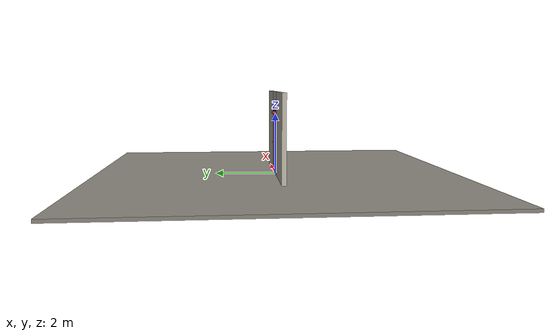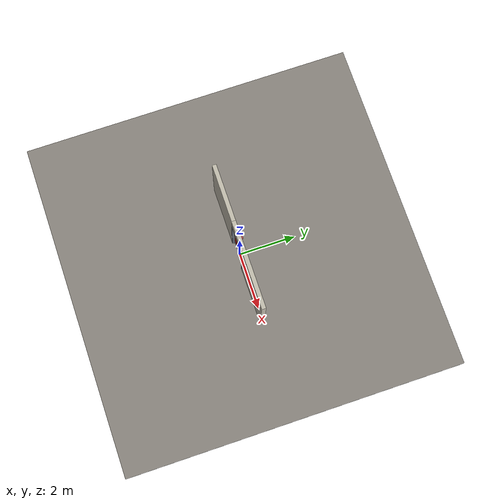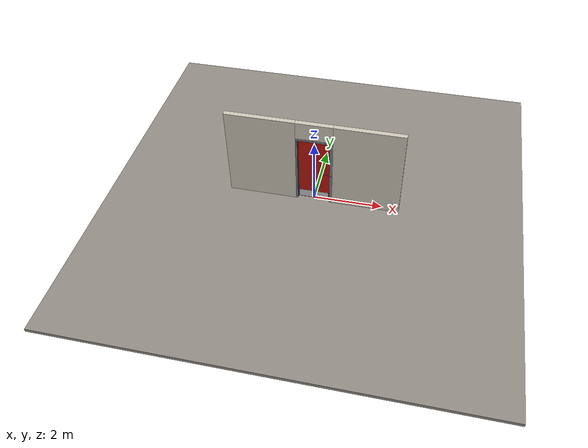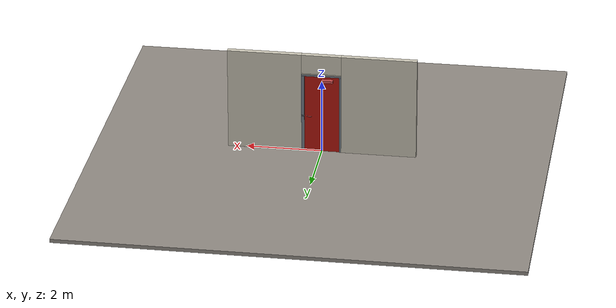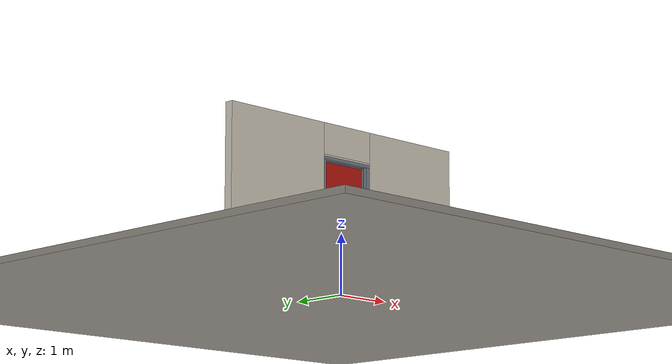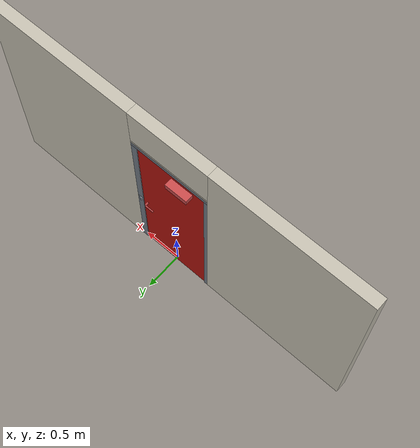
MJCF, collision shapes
<?xml version="1.0" ?>
<mujoco model="db0378_swing_single_simple">
  <compiler angle="radian" meshdir="../../hardware" texturedir="../../textures" autolimits="true" inertiafromgeom="false"/>
  <option timestep="0.002" integrator="implicitfast" cone="elliptic" impratio="10" noslip_iterations="3">
    <flag multiccd="enable"/>
  </option>
  <size memory="16M"/>
  <default>
    <geom condim="4" solref="0.005 1" solimp="0.95 0.99 0.001"/>
    <joint solreflimit="0.005 1" solimplimit="0.95 0.99 0.001"/>
    <tendon solreflimit="0.005 1"/>
    <equality solref="0.002 1"/>
  </default>
  <visual>
    <headlight ambient="0.4 0.4 0.4" diffuse="0.7 0.7 0.7" specular="0.2 0.2 0.2"/>
    <quality shadowsize="4096"/>
    <map znear="0.01" zfar="60"/>
  </visual>
  <asset>
    <mesh name="closer_body_fdc4667657" file="closer_body_fdc4667657.obj"/>
    <mesh name="hinge_ed08f20e7f" file="hinge_ed08f20e7f.obj"/>
    <mesh name="hinge_jamb_1278ce3e25" file="hinge_jamb_1278ce3e25.obj"/>
    <mesh name="lever_9f02b544cf" file="lever_9f02b544cf.obj"/>
    <material name="mat_floor" rgba="0.55 0.53 0.5 1" specular="0.2" shininess="0.15" reflectance="0"/>
    <material name="mat_wall" rgba="0.78 0.76 0.7 1" specular="0.2" shininess="0.1" reflectance="0"/>
    <material name="mat_leaf" rgba="0.7 0.08 0.05 1" specular="0.23" shininess="0.35" reflectance="0.02"/>
    <material name="mat_hinge" rgba="0.65 0.66 0.68 1" specular="0.74" shininess="0.5" reflectance="0.36"/>
    <material name="mat_op_nickel_satin" rgba="0.72 0.7 0.66 1" specular="0.8" shininess="0.65" reflectance="0.4"/>
    <material name="mat_trim" rgba="0.85 0.66 0.3 1" specular="0.8" shininess="0.75" reflectance="0.4"/>
    <material name="mat_bolt" rgba="0.85 0.66 0.3 1" specular="0.8" shininess="0.75" reflectance="0.4"/>
    <material name="mat_frame" rgba="0.45 0.48 0.52 1" specular="0.32" shininess="0.6" reflectance="0.08"/>
    <material name="mat_seal" rgba="0.1 0.1 0.1 1" specular="0.2" shininess="0.1" reflectance="0"/>
    <material name="mat_closer" rgba="0.22 0.17 0.13 1" specular="0.8" shininess="0.6" reflectance="0.4"/>
    <material name="mat_kick" rgba="0.75 0.76 0.77 1" specular="0.8" shininess="0.65" reflectance="0.4"/>
    <material name="mat_exit_sign" rgba="0.85 0.1 0.1 1" specular="0.2" shininess="0.6" reflectance="0"/>
    <material name="mat_sign_bracket" rgba="0.8 0.81 0.83 1" specular="0.8" shininess="0.6" reflectance="0.4"/>
    <material name="mat_sign" rgba="0.75 0.76 0.77 1" specular="0.8" shininess="0.65" reflectance="0.4"/>
    <material name="mat_placard" rgba="0.95 0.75 0.05 1" specular="0.2" shininess="0.5" reflectance="0"/>
    <texture name="skybox" type="skybox" builtin="gradient" rgb1="0.6 0.7 0.85" rgb2="0.9 0.92 0.95" width="256" height="256"/>
  </asset>
  <worldbody>
    <light name="sun" pos="1.5 -2.5 4" dir="-0.3 0.5 -0.8" directional="true" diffuse="0.8 0.8 0.8" specular="0.3 0.3 0.3" castshadow="true"/>
    <light name="fill" pos="-1.5 2.5 3" dir="0.3 -0.5 -0.7" directional="true" diffuse="0.35 0.35 0.4" castshadow="false"/>
    <camera name="robot_view" pos="0 -2.681312 1.812087" xyaxes="1 0 0 0 0.26963 0.962964" fovy="52"/>
    <camera name="far_view" pos="0 2.594313 1.812087" xyaxes="-1 0 0 0 -0.26963 0.962964" fovy="52"/>
    <camera name="iso" pos="2.004737 -2.259262 2.234138" xyaxes="0.741536 0.670913 0 -0.242917 0.268487 0.932151" fovy="46"/>
    <camera name="detail_handle" pos="0.4665 -0.877 1.296" xyaxes="0.97561 0.219512 0 -0.070934 0.315262 0.94635" fovy="38"/>
    <geom name="floor" type="box" size="6 6 0.05" pos="0 0 -0.05" material="mat_floor" group="0" contype="1" conaffinity="1" friction="0.8 0.005 0.0001" density="2400"/>
    <geom name="wall_left" type="box" size="0.99475 0.0725 1.3735" pos="-1.50525 -0.0435 1.3735" material="mat_wall" group="0" contype="1" conaffinity="1" friction="0.6 0.005 0.0001" density="800"/>
    <geom name="wall_right" type="box" size="0.97975 0.0725 1.3735" pos="1.52025 -0.0435 1.3735" material="mat_wall" group="0" contype="1" conaffinity="1" friction="0.6 0.005 0.0001" density="800"/>
    <geom name="wall_header" type="box" size="0.5255 0.0725 0.26" pos="0.015 -0.0435 2.487" material="mat_wall" group="0" contype="1" conaffinity="1" friction="0.6 0.005 0.0001" density="800"/>
    <geom name="hinge_0_jamb" type="mesh" mesh="hinge_jamb_1278ce3e25" pos="-0.4575 0.029 0.259" quat="0 1 0 0" material="mat_hinge" group="1" contype="0" conaffinity="0" density="7850"/>
    <geom name="hinge_1_jamb" type="mesh" mesh="hinge_jamb_1278ce3e25" pos="-0.4575 0.029 0.827" quat="0 1 0 0" material="mat_hinge" group="1" contype="0" conaffinity="0" density="7850"/>
    <geom name="hinge_2_jamb" type="mesh" mesh="hinge_jamb_1278ce3e25" pos="-0.4575 0.029 1.395" quat="0 1 0 0" material="mat_hinge" group="1" contype="0" conaffinity="0" density="7850"/>
    <geom name="hinge_3_jamb" type="mesh" mesh="hinge_jamb_1278ce3e25" pos="-0.4575 0.029 1.963" quat="0 1 0 0" material="mat_hinge" group="1" contype="0" conaffinity="0" density="7850"/>
    <geom name="jamb_hinge" type="box" size="0.025 0.0725 1.0735" pos="-0.4855 -0.0435 1.0735" material="mat_frame" group="0" contype="1" conaffinity="1" friction="0.6 0.005 0.0001" density="300"/>
    <geom name="strike_1016_wall_n" type="box" size="0.04 0.05325 0.0183" pos="0.5005 -0.06275 1.016" material="mat_frame" group="0" contype="1" conaffinity="1" friction="0.6 0.005 0.0001" density="300"/>
    <geom name="strike_1016_wall_p" type="box" size="0.04 0.008 0.0183" pos="0.5005 0.0175 1.016" material="mat_frame" group="0" contype="1" conaffinity="1" friction="0.6 0.005 0.0001" density="300"/>
    <geom name="strike_1016_ramp" type="box" size="0.04 0.018028 0.0183" pos="0.503782 0.018312 1.016" quat="0.957092 0 0 -0.289784" material="mat_frame" group="0" contype="1" conaffinity="1" friction="0.12 0.005 0.0001" density="300"/>
    <geom name="strike_1016_back" type="box" size="0.0285 0.0095 0.0183" pos="0.512 0 1.016" material="mat_frame" group="0" contype="1" conaffinity="1" friction="0.6 0.005 0.0001" density="300"/>
    <geom name="jamb_strike_0" type="box" size="0.04 0.0725 0.49885" pos="0.5005 -0.0435 0.49885" material="mat_frame" group="0" contype="1" conaffinity="1" friction="0.6 0.005 0.0001" density="300"/>
    <geom name="jamb_strike_1" type="box" size="0.04 0.0725 0.55635" pos="0.5005 -0.0435 1.59065" material="mat_frame" group="0" contype="1" conaffinity="1" friction="0.6 0.005 0.0001" density="300"/>
    <geom name="jamb_head" type="box" size="0.5255 0.0725 0.025" pos="0.015 -0.0435 2.172" material="mat_frame" group="0" contype="1" conaffinity="1" friction="0.6 0.005 0.0001" density="300"/>
    <geom name="head_stud" type="box" size="0.5255 0.0725 0.015" pos="0.015 -0.0435 2.212" material="mat_wall" group="0" contype="1" conaffinity="1" friction="0.6 0.005 0.0001" density="500"/>
    <geom name="stop_hinge" type="box" size="0.0055 0.016 1.0735" pos="-0.455 -0.0385 1.0735" material="mat_frame" group="0" contype="1" conaffinity="1" friction="0.6 0.005 0.0001" density="300"/>
    <geom name="stop_strike" type="box" size="0.0055 0.016 1.0735" pos="0.455 -0.0385 1.0735" material="mat_frame" group="0" contype="1" conaffinity="1" friction="0.6 0.005 0.0001" density="300"/>
    <geom name="stop_head" type="box" size="0.4605 0.016 0.0055" pos="0 -0.0385 2.1415" material="mat_frame" group="0" contype="1" conaffinity="1" friction="0.6 0.005 0.0001" density="300"/>
    <geom name="seal_hinge" type="box" size="0.004 0.0025 1.0735" pos="-0.4575 -0.0245 1.0735" material="mat_seal" group="1" contype="0" conaffinity="0" density="1100"/>
    <geom name="seal_strike" type="box" size="0.004 0.0025 1.0735" pos="0.4575 -0.0245 1.0735" material="mat_seal" group="1" contype="0" conaffinity="0" density="1100"/>
    <geom name="seal_head" type="box" size="0.4405 0.0025 0.008" pos="0 -0.0245 2.135" material="mat_seal" group="1" contype="0" conaffinity="0" density="1100"/>
    <site name="approach_point" pos="0 -1.5 0" quat="1 0 0 0" size="0.05" rgba="0.2 0.9 0.2 0.5" group="4"/>
    <site name="goal_point" pos="0 1.5 0" quat="1 0 0 0" size="0.05" rgba="0.2 0.9 0.2 0.5" group="4"/>
    <site name="door_plane_center" pos="0 0 1.0735" quat="1 0 0 0" size="0.02" rgba="0.2 0.9 0.2 0.5" group="4"/>
    <body name="leaf" pos="-0.4605 0 0">
      <inertial pos="0.415704 0.01546 1.256051" mass="54.277815" quat="-0.472006 0.496104 0.516882 0.513736" diaginertia="3.30877013 27.088178049 30.306033322"/>
      <joint name="leaf_hinge" type="hinge" axis="0 0 1" pos="0.003 0.029 0" limited="true" range="0 1.570796" solreflimit="0.02 1" damping="12.268966" frictionloss="2.037189" stiffness="10.879832" springref="-2.101135" armature="0.02"/>
      <geom name="leaf_slab" type="box" size="0.457 0.022 1.067" pos="0.46 0 1.076" material="mat_leaf" group="0" contype="1" conaffinity="1" friction="0.4 0.005 0.0001" density="1"/>
      <geom name="hinge_0" type="mesh" mesh="hinge_ed08f20e7f" pos="0.003 0.029 0.259" quat="0 1 0 0" material="mat_hinge" group="1" contype="0" conaffinity="0" density="7850"/>
      <geom name="hinge_1" type="mesh" mesh="hinge_ed08f20e7f" pos="0.003 0.029 0.827" quat="0 1 0 0" material="mat_hinge" group="1" contype="0" conaffinity="0" density="7850"/>
      <geom name="hinge_2" type="mesh" mesh="hinge_ed08f20e7f" pos="0.003 0.029 1.395" quat="0 1 0 0" material="mat_hinge" group="1" contype="0" conaffinity="0" density="7850"/>
      <geom name="hinge_3" type="mesh" mesh="hinge_ed08f20e7f" pos="0.003 0.029 1.963" quat="0 1 0 0" material="mat_hinge" group="1" contype="0" conaffinity="0" density="7850"/>
      <geom name="leaf_latch_bolt_faceplate" type="box" size="0.0006 0.014 0.0283" pos="0.9164 0 1.016" material="mat_bolt" group="1" contype="0" conaffinity="0" density="8500"/>
      <geom name="closer_body" type="mesh" mesh="closer_body_fdc4667657" pos="0.3 0.022 2.054" quat="-0.707107 0.707107 0 0" material="mat_closer" group="1" contype="0" conaffinity="0" density="2000"/>
      <geom name="closer_body_col" type="box" size="0.145 0.05 0.035" pos="0.3 0.072 2.054" material="mat_closer" group="3" contype="1" conaffinity="1" rgba="0.8 0.3 0.3 0.25" friction="0.6 0.005 0.0001" density="2000"/>
      <geom name="kick_plate_n" type="box" size="0.427 0.0008 0.125" pos="0.46 -0.0228 0.144" material="mat_kick" group="2" contype="0" conaffinity="0" density="7900"/>
      <site name="leaf_edge_mid" pos="0.917 0 1.067" quat="1 0 0 0" size="0.02" rgba="0.2 0.9 0.2 0.5" group="4"/>
      <body name="leaf_handle" pos="0.847 0 1.016">
        <inertial pos="-0.030188 0 0" mass="0.924918" quat="0.707107 0 0 -0.707107" diaginertia="0.001725188 0.003587995 0.005135939"/>
        <joint name="leaf_handle_hinge" type="hinge" axis="0 -1 0" limited="true" range="0 0.96" damping="0.245624" frictionloss="0.048" stiffness="1.2" springref="-0.458333" armature="0.01"/>
        <geom name="leaf_handle_lever_n" type="mesh" mesh="lever_9f02b544cf" pos="0 -0.022 0" quat="0.707107 0.707107 0 0" material="mat_op_nickel_satin" group="1" contype="0" conaffinity="0" density="3000"/>
        <geom name="leaf_handle_lever_col_n" type="capsule" size="0.0095 0.053" pos="-0.0625 -0.077 0" quat="0.707107 0 -0.707107 0" material="mat_op_nickel_satin" group="3" contype="1" conaffinity="1" rgba="0.8 0.3 0.3 0.25" friction="0.7 0.01 0.0001" density="3000"/>
        <geom name="leaf_handle_hub_col_n" type="cylinder" size="0.012 0.022" pos="0 -0.052 0" quat="0.707107 -0.707107 0 0" material="mat_op_nickel_satin" group="3" contype="1" conaffinity="1" rgba="0.8 0.3 0.3 0.25" friction="0.6 0.005 0.0001" density="3000"/>
        <geom name="leaf_handle_lever_p" type="mesh" mesh="lever_9f02b544cf" pos="0 0.022 0" quat="-0.707107 0.707107 0 0" material="mat_op_nickel_satin" group="1" contype="0" conaffinity="0" density="3000"/>
        <geom name="leaf_handle_lever_col_p" type="capsule" size="0.0095 0.053" pos="-0.0625 0.077 0" quat="0.707107 0 -0.707107 0" material="mat_op_nickel_satin" group="3" contype="1" conaffinity="1" rgba="0.8 0.3 0.3 0.25" friction="0.7 0.01 0.0001" density="3000"/>
        <geom name="leaf_handle_hub_col_p" type="cylinder" size="0.012 0.022" pos="0 0.052 0" quat="0.707107 -0.707107 0 0" material="mat_op_nickel_satin" group="3" contype="1" conaffinity="1" rgba="0.8 0.3 0.3 0.25" friction="0.6 0.005 0.0001" density="3000"/>
        <site name="leaf_handle_grip_n" pos="-0.1 -0.077 0" quat="1 0 0 0" size="0.012" rgba="0.2 0.9 0.2 0.5" group="4"/>
        <site name="leaf_handle_grip_p" pos="-0.1 0.077 0" quat="1 0 0 0" size="0.012" rgba="0.2 0.9 0.2 0.5" group="4"/>
      </body>
      <body name="leaf_latch_bolt" pos="0.917 0 1.016">
        <inertial pos="-0.0055 0 0" mass="0.074627" quat="0.92388 -0.382683 0 0" diaginertia="0.000002271 0.000013255 0.000013255"/>
        <joint name="leaf_latch_bolt_slide" type="slide" axis="-1 0 0" limited="true" range="0 0.019" damping="2" frictionloss="0.3" stiffness="600" springref="-0.01" armature="0.1"/>
        <geom name="leaf_latch_bolt_capsule" type="capsule" size="0.008 0.0165" pos="-0.0055 0 0" quat="0.707107 0 0.707107 0" material="mat_bolt" group="0" contype="1" conaffinity="1" friction="0.2 0.005 0.0001" density="8500"/>
      </body>
    </body>
  </worldbody>
  <tendon>
    <fixed name="leaf_latch_bolt_coupling" limited="true" range="0 10">
      <joint joint="leaf_latch_bolt_slide" coef="1"/>
      <joint joint="leaf_handle_hinge" coef="-0.020879"/>
    </fixed>
  </tendon>
  <sensor>
    <jointpos name="leaf_hinge_pos" joint="leaf_hinge"/>
    <jointvel name="leaf_hinge_vel" joint="leaf_hinge"/>
    <jointpos name="leaf_handle_hinge_pos" joint="leaf_handle_hinge"/>
    <jointvel name="leaf_handle_hinge_vel" joint="leaf_handle_hinge"/>
    <jointpos name="leaf_latch_bolt_slide_pos" joint="leaf_latch_bolt_slide"/>
    <jointvel name="leaf_latch_bolt_slide_vel" joint="leaf_latch_bolt_slide"/>
  </sensor>
</mujoco>
